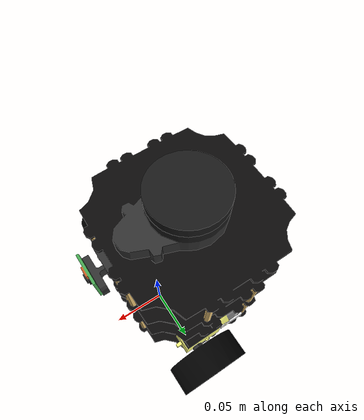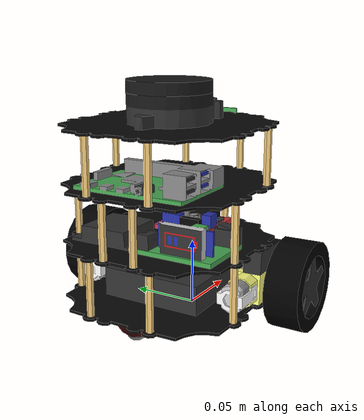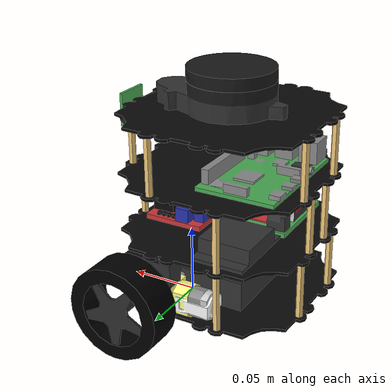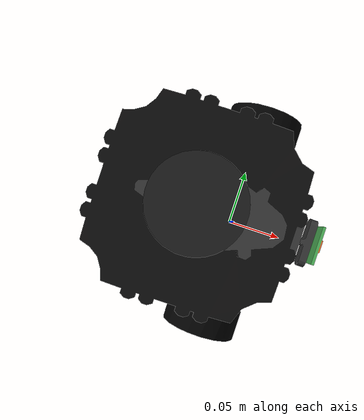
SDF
<sdf version='1.7'>
  <model name='tortoisebot_simple'>
    <link name = 'base_footprint'/>
    <link name='base_link'>
      <inertial>
        <pose>-0.030581 -0.00041 0.079436 0 -0 0</pose>
        <mass>1.1622</mass>
        <inertia>
          <ixx>0.00430576</ixx>
          <ixy>-1.20273e-05</ixy>
          <ixz>-5.03252e-05</ixz>
          <iyy>0.00405645</iyy>
          <iyz>1.90146e-05</iyz>
          <izz>0.0022887</izz>
        </inertia>
      </inertial>
      <collision name='base_link_collision'>
        <pose>0 0 0 0 -0 0</pose>
        <geometry>
          <mesh>
            <scale>0.001 0.001 0.001</scale>
            <uri>file:///home/pacman/tortoisebot_rb/install/tortoisebot_description/share/tortoisebot_description/models/meshes/base_link.dae</uri>
          </mesh>
        </geometry>
        <surface>
          <contact>
            <ode/>
          </contact>
          <friction>
            <ode>
              <mu>0.2</mu>
              <mu2>0.2</mu2>
            </ode>
          </friction>
        </surface>
      </collision>
      <collision name='base_link_fixed_joint_lump__camera_holder_collision_1'>
        <pose>0 0 0 0 -0 0</pose>
        <geometry>
          <mesh>
            <scale>0.001 0.001 0.001</scale>
            <uri>file:///home/pacman/tortoisebot_rb/install/tortoisebot_description/share/tortoisebot_description/models/meshes/camera_holder.dae</uri>
          </mesh>
        </geometry>
        <surface>
          <contact>
            <ode/>
          </contact>
          <friction>
            <ode>
              <mu>0.2</mu>
              <mu2>0.2</mu2>
            </ode>
          </friction>
        </surface>
      </collision>
      <collision name='base_link_fixed_joint_lump__camera_link_collision_2'>
        <pose>0 0 0 0 -0 0</pose>
        <geometry>
          <mesh>
            <scale>0.001 0.001 0.001</scale>
            <uri>file:///home/pacman/tortoisebot_rb/install/tortoisebot_description/share/tortoisebot_description/models/meshes/camera_link.dae</uri>
          </mesh>
        </geometry>
        <surface>
          <contact>
            <ode/>
          </contact>
          <friction>
            <ode>
              <mu>0.2</mu>
              <mu2>0.2</mu2>
            </ode>
          </friction>
        </surface>
      </collision>
      <collision name='base_link_fixed_joint_lump__castor_wheel_collision_3'>
        <pose>0 0 0 0 -0 0</pose>
        <geometry>
          <mesh>
            <scale>0.001 0.001 0.001</scale>
            <uri>file:///home/pacman/tortoisebot_rb/install/tortoisebot_description/share/tortoisebot_description/models/meshes/castor_wheel.dae</uri>
          </mesh>
        </geometry>
        <surface>
          <contact>
            <ode/>
          </contact>
          <friction>
            <ode>
              <mu>0.1</mu>
              <mu2>0.1</mu2>
            </ode>
          </friction>
        </surface>
      </collision>
      <collision name='base_link_fixed_joint_lump__lidar_collision_4'>
        <pose>0 0 0 0 -0 0</pose>
        <geometry>
          <mesh>
            <scale>0.001 0.001 0.001</scale>
            <uri>file:///home/pacman/tortoisebot_rb/install/tortoisebot_description/share/tortoisebot_description/models/meshes/lidar.dae</uri>
          </mesh>
        </geometry>
        <surface>
          <contact>
            <ode/>
          </contact>
          <friction>
            <ode>
              <mu>0.2</mu>
              <mu2>0.2</mu2>
            </ode>
          </friction>
        </surface>
      </collision>
      <visual name='base_link_visual'>
        <pose>0 0 0 0 -0 0</pose>
        <geometry>
          <mesh>
            <scale>0.001 0.001 0.001</scale>
            <uri>file:///home/pacman/tortoisebot_rb/install/tortoisebot_description/share/tortoisebot_description/models/meshes/base_link.dae</uri>
          </mesh>
        </geometry>
      </visual>
      <visual name='base_link_fixed_joint_lump__camera_holder_visual_1'>
        <pose>0 0 0 0 -0 0</pose>
        <geometry>
          <mesh>
            <scale>0.001 0.001 0.001</scale>
            <uri>file:///home/pacman/tortoisebot_rb/install/tortoisebot_description/share/tortoisebot_description/models/meshes/camera_holder.dae</uri>
          </mesh>
        </geometry>
      </visual>
      <visual name='base_link_fixed_joint_lump__camera_link_visual_2'>
        <pose>0 0 0 0 -0 0</pose>
        <geometry>
          <mesh>
            <scale>0.001 0.001 0.001</scale>
            <uri>file:///home/pacman/tortoisebot_rb/install/tortoisebot_description/share/tortoisebot_description/models/meshes/camera_link.dae</uri>
          </mesh>
        </geometry>
      </visual>
      <visual name='base_link_fixed_joint_lump__castor_wheel_visual_3'>
        <pose>0 0 0 0 -0 0</pose>
        <geometry>
          <mesh>
            <scale>0.001 0.001 0.001</scale>
            <uri>file:///home/pacman/tortoisebot_rb/install/tortoisebot_description/share/tortoisebot_description/models/meshes/castor_wheel.dae</uri>
          </mesh>
        </geometry>
      </visual>
      <visual name='base_link_fixed_joint_lump__lidar_visual_4'>
        <pose>0 0 0 0 -0 0</pose>
        <geometry>
          <mesh>
            <scale>0.001 0.001 0.001</scale>
            <uri>file:///home/pacman/tortoisebot_rb/install/tortoisebot_description/share/tortoisebot_description/models/meshes/lidar.dae</uri>
          </mesh>
        </geometry>
      </visual>
      <gravity>1</gravity>
      <sensor name='raspberrypi_camera' type='camera'>
        <update_rate>30</update_rate>
        <camera name='raspberrypi_camera'>
          <horizontal_fov>0.933751</horizontal_fov>
          <image>
            <width>410</width>
            <height>308</height>
            <format>R8G8B8</format>
          </image>
          <clip>
            <near>0.002</near>
            <far>300</far>
          </clip>
          <noise>
            <type>gaussian</type>
            <mean>0</mean>
            <stddev>0.007</stddev>
          </noise>
        </camera>
        <plugin name='camera_controller_pi' filename='libgazebo_ros_camera.so'>
          <alwaysOn>1</alwaysOn>
          <updateRate>0.0</updateRate>
          <cameraName>/camera</cameraName>
          <imageTopicName>/raspicam_node/image</imageTopicName>
          <cameraInfoTopicName>camera_info</cameraInfoTopicName>
          <frameName>camera_link</frameName>
          <hackBaseline>0.07</hackBaseline>
          <distortionK1>0.0</distortionK1>
          <distortionK2>0.0</distortionK2>
          <distortionK3>0.0</distortionK3>
          <distortionT1>0.0</distortionT1>
          <distortionT2>0.0</distortionT2>
        </plugin>
        <pose>0.05025 1e-05 0.133907 0 -0 0</pose>
      </sensor>
      <sensor name='ydlidar' type='ray'>
        <always_on>1</always_on>
        <visualize>0</visualize>
        <update_rate>10</update_rate>
        <ray>
          <scan>
            <horizontal>
              <samples>720</samples>
              <resolution>1</resolution>
              <min_angle>-3.14</min_angle>
              <max_angle>3.14</max_angle>
            </horizontal>
          </scan>
          <range>
            <min>0.05</min>
            <max>20</max>
            <resolution>0.015</resolution>
          </range>
          <noise>
            <type>gaussian</type>
            <mean>0</mean>
            <stddev>0.01</stddev>
          </noise>
        </ray>
        <plugin name='ttb_lidar' filename='libgazebo_ros_ray_sensor.so'>
          <ros>
            <remapping>~/out:=scan</remapping>
          </ros>
          <output_type>sensor_msgs/LaserScan</output_type>
          <frame_name>lidar</frame_name>
        </plugin>
        <pose>-0.03275 0 0.167 0 -0 0</pose>
      </sensor>
    </link>
    <joint name='wheel_left_joint' type='revolute'>
      <pose relative_to='base_link'>-0.000197 0.0778 0.032453 0 -0 0</pose>
      <parent>base_link</parent>
      <child>wheel_left</child>
      <axis>
        <xyz>0 1 0</xyz>
        <limit>
          <lower>-1e+16</lower>
          <upper>1e+16</upper>
        </limit>
        <dynamics>
          <spring_reference>0</spring_reference>
          <spring_stiffness>0</spring_stiffness>
        </dynamics>
      </axis>
    </joint>
    <link name='wheel_left'>
      <pose relative_to='wheel_left_joint'>0 0 0 0 -0 0</pose>
      <inertial>
        <pose>-0 0.008993 -0 0 -0 0</pose>
        <mass>0.0435594</mass>
        <inertia>
          <ixx>1.9e-05</ixx>
          <ixy>0</ixy>
          <ixz>0</ixz>
          <iyy>3.3e-05</iyy>
          <iyz>0</iyz>
          <izz>1.9e-05</izz>
        </inertia>
      </inertial>
      <collision name='wheel_left_collision'>
        <pose>0.000197 -0.0778 -0.032453 0 -0 0</pose>
        <geometry>
          <mesh>
            <scale>0.001 0.001 0.001</scale>
            <uri>file:///home/pacman/tortoisebot_rb/install/tortoisebot_description/share/tortoisebot_description/models/meshes/wheel_left.dae</uri>
          </mesh>
        </geometry>
        <surface>
          <contact>
            <ode>
              <kp>500000</kp>
              <kd>10</kd>
              <min_depth>0.001</min_depth>
            </ode>
          </contact>
          <friction>
            <ode>
              <mu>1</mu>
              <mu2>1</mu2>
            </ode>
          </friction>
        </surface>
      </collision>
      <visual name='wheel_left_visual'>
        <pose>0.000197 -0.0778 -0.032453 0 -0 0</pose>
        <geometry>
          <mesh>
            <scale>0.001 0.001 0.001</scale>
            <uri>file:///home/pacman/tortoisebot_rb/install/tortoisebot_description/share/tortoisebot_description/models/meshes/wheel_left.dae</uri>
          </mesh>
        </geometry>
      </visual>
    </link>
    <joint name='wheel_right_joint' type='revolute'>
      <pose relative_to='base_link'>0.0001 -0.0778 0.032453 0 -0 0</pose>
      <parent>base_link</parent>
      <child>wheel_right</child>
      <axis>
        <xyz>0 1 0</xyz>
        <limit>
          <lower>-1e+16</lower>
          <upper>1e+16</upper>
        </limit>
        <dynamics>
          <spring_reference>0</spring_reference>
          <spring_stiffness>0</spring_stiffness>
        </dynamics>
      </axis>
    </joint>
    <link name='wheel_right'>
      <pose relative_to='wheel_right_joint'>0 0 0 0 -0 0</pose>
      <inertial>
        <pose>0 -0.008992 -0 0 -0 0</pose>
        <mass>0.0435594</mass>
        <inertia>
          <ixx>1.9e-05</ixx>
          <ixy>0</ixy>
          <ixz>0</ixz>
          <iyy>3.3e-05</iyy>
          <iyz>0</iyz>
          <izz>1.9e-05</izz>
        </inertia>
      </inertial>
      <collision name='wheel_right_collision'>
        <pose>-0.0001 0.0778 -0.032453 0 -0 0</pose>
        <geometry>
          <mesh>
            <scale>0.001 0.001 0.001</scale>
            <uri>file:///home/pacman/tortoisebot_rb/install/tortoisebot_description/share/tortoisebot_description/models/meshes/wheel_right.dae</uri>
          </mesh>
        </geometry>
        <surface>
          <contact>
            <ode>
              <kp>500000</kp>
              <kd>10</kd>
              <min_depth>0.001</min_depth>
            </ode>
          </contact>
          <friction>
            <ode>
              <mu>1</mu>
              <mu2>1</mu2>
            </ode>
          </friction>
        </surface>
      </collision>
      <visual name='wheel_right_visual'>
        <pose>-0.0001 0.0778 -0.032453 0 -0 0</pose>
        <geometry>
          <mesh>
            <scale>0.001 0.001 0.001</scale>
            <uri>file:///home/pacman/tortoisebot_rb/install/tortoisebot_description/share/tortoisebot_description/models/meshes/wheel_right.dae</uri>
          </mesh>
        </geometry>
      </visual>
    </link>
    <static>0</static>
        <plugin name="turtlebot3_diff_drive" filename="libgazebo_ros_diff_drive.so">

      <ros>
        <remapping>/tf:=tf</remapping>
      </ros>

      <update_rate>30</update_rate>
      <left_joint>wheel_left_joint</left_joint>
      <right_joint>wheel_right_joint</right_joint>

      <wheel_separation>0.287</wheel_separation>
      <wheel_diameter>0.066</wheel_diameter>

      <max_wheel_torque>20</max_wheel_torque>
      <max_wheel_acceleration>1.0</max_wheel_acceleration>

      <command_topic>cmd_vel</command_topic>

      <publish_odom>true</publish_odom>
      <publish_odom_tf>true</publish_odom_tf>
      <publish_wheel_tf>false</publish_wheel_tf>

      <odometry_topic>odom</odometry_topic>
      <odometry_frame>odom</odometry_frame>
      <robot_base_frame>base_footprint</robot_base_frame>

    </plugin>

    <joint name='base_joint_mine' type='fixed'>
      <parent>base_footprint</parent>
      <child>base_link</child>
    </joint>
  </model>
</sdf>
